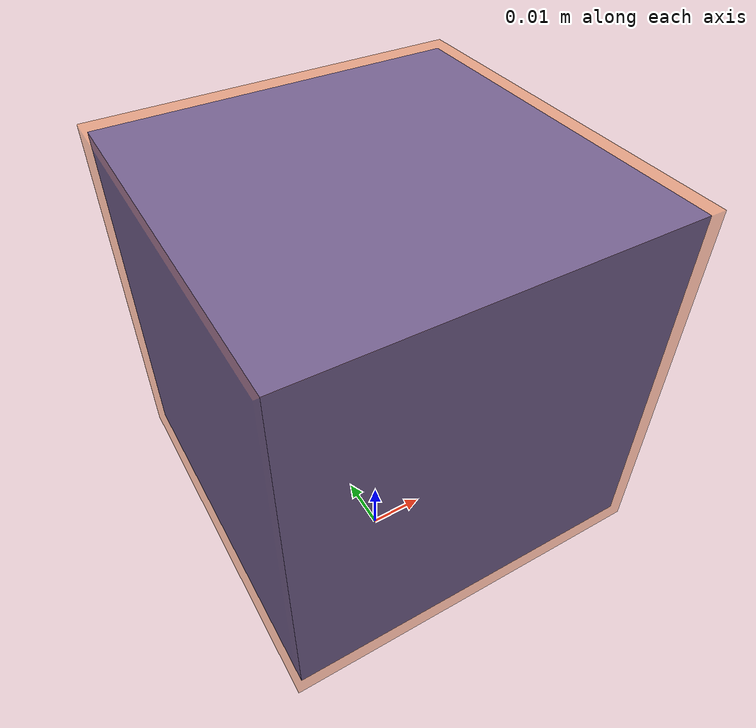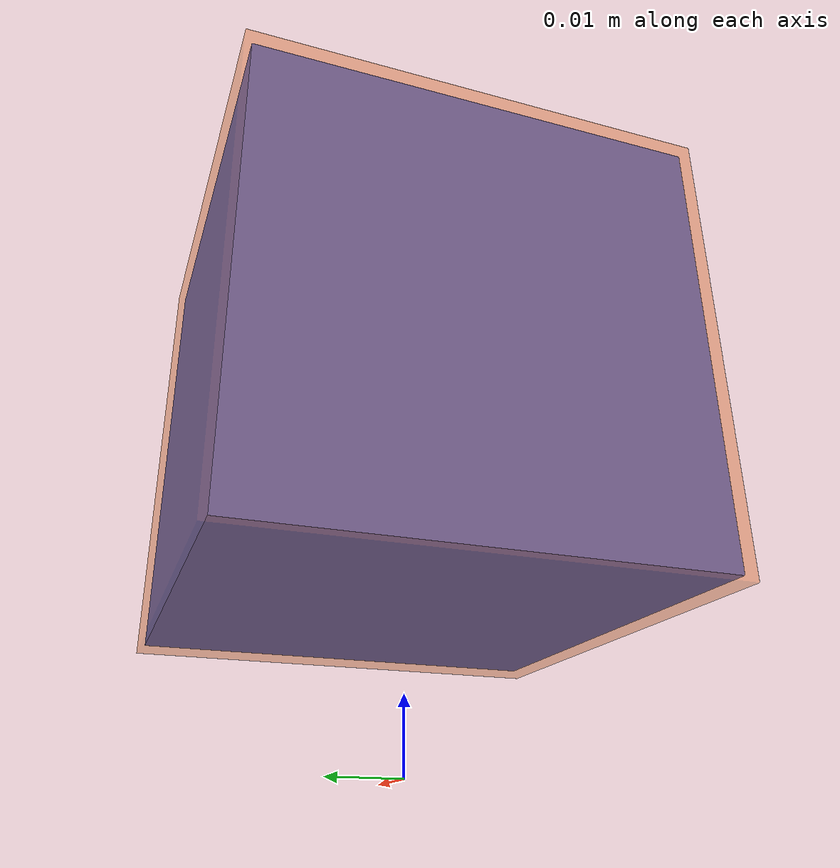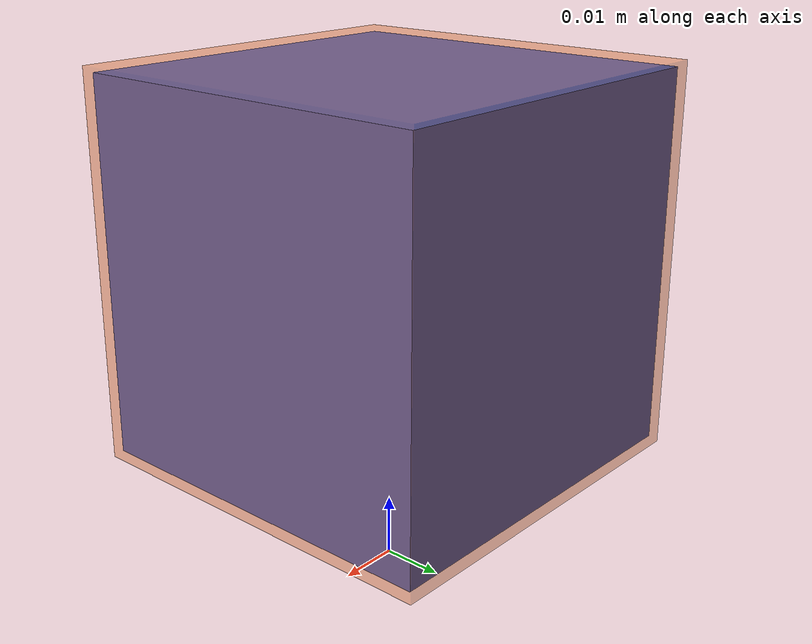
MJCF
<mujoco model="cube_c">
  <compiler angle="radian"/>
  <worldbody>
    <body name="object" pos="0 0 0.05">
      <inertial pos="0 0 0" mass="0.2" diaginertia="0.001 0.001 0.001"/>
      <geom name="visual" type="box" size="0.031 0.031 0.031"
            contype="0" conaffinity="0" rgba="0.9 0.4 0.1 0.4"/>
      <geom name="collision" type="box" size="0.03 0.03 0.03"
            contype="1" conaffinity="1" rgba="0.2 0.4 0.9 1"/>
    </body>
  </worldbody>
</mujoco>
